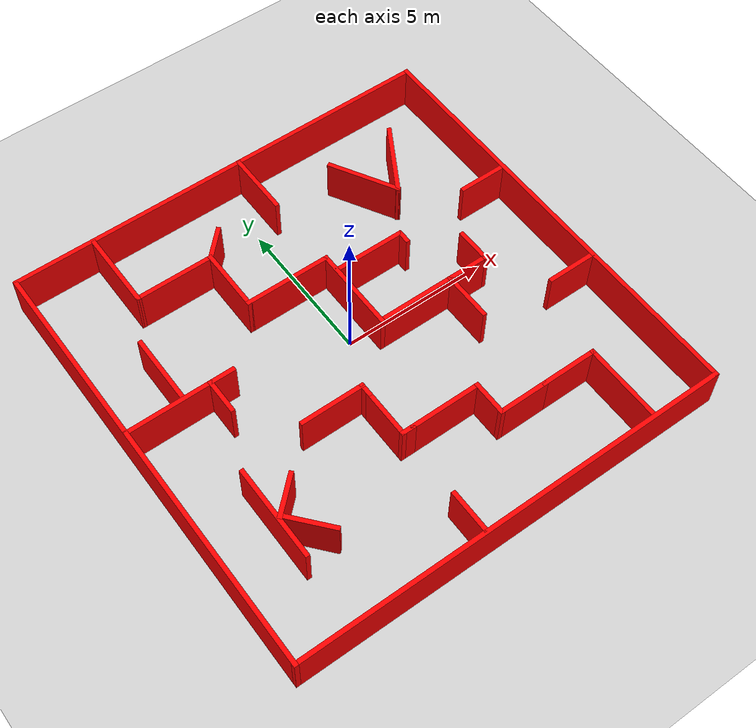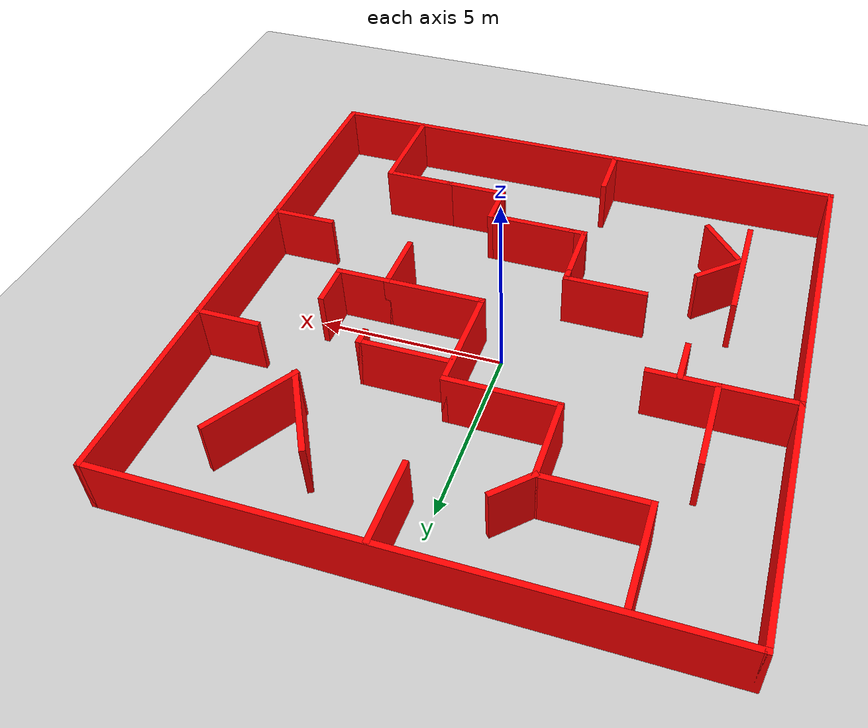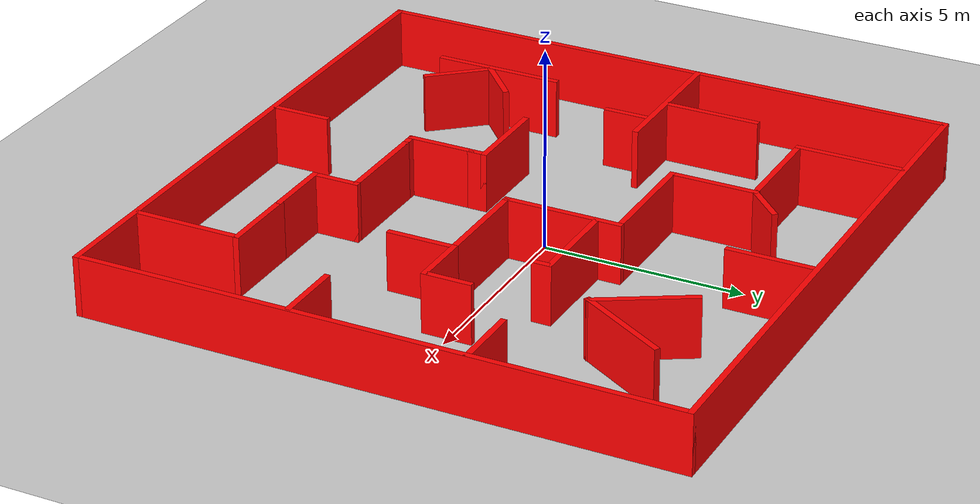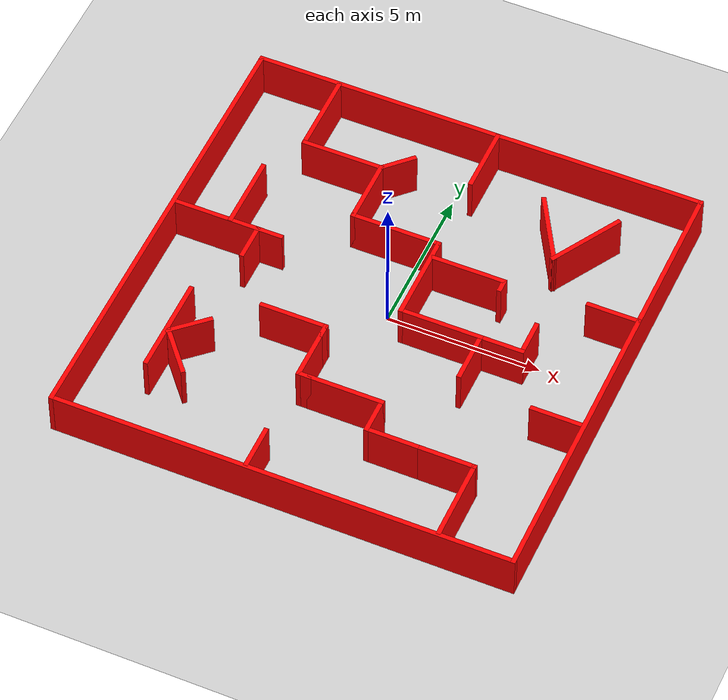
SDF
<sdf version="1.4">
 <world name="default">
  <light name="sun" type="directional">
   <pose>0 0 10 0 -0 0</pose>
   <diffuse>0.8 0.8 0.8 1</diffuse>
   <specular>0.2 0.2 0.2 1</specular>
   <attenuation>
    <range>1000</range>
    <constant>0.9</constant>
    <linear>0.01</linear>
    <quadratic>0.001</quadratic>
   </attenuation>
   <direction>-0.5 0.1 -0.9</direction>
  </light>
  <model name="ground_plane">
   <static>1</static>
   <link name="link">
    <collision name="collision">
     <geometry><plane><normal>0 0 1</normal><size>100 100</size></plane></geometry>
     <surface><friction><ode><mu>100</mu><mu2>50</mu2></ode></friction></surface>
    </collision>
    <visual name="visual">
     <cast_shadows>0</cast_shadows>
     <geometry><plane><normal>0 0 1</normal><size>100 100</size></plane></geometry>
     <material>
      <script><uri>file://media/materials/scripts/gazebo.material</uri><name>Gazebo/Grey</name></script>
     </material>
    </visual>
    <velocity_decay><linear>0</linear><angular>0</angular></velocity_decay>
   </link>
  </model>
  <physics type="ode">
   <max_step_size>0.001</max_step_size>
   <real_time_factor>1</real_time_factor>
   <real_time_update_rate>1000</real_time_update_rate>
   <gravity>0 0 -9.8</gravity>
  </physics>
  <scene><ambient>0.4 0.4 0.4 1</ambient><background>0.7 0.7 0.7 1</background><shadows>1</shadows></scene>
  <spherical_coordinates>
   <surface_model>EARTH_WGS84</surface_model>
   <latitude_deg>0</latitude_deg>
   <longitude_deg>0</longitude_deg>
   <elevation>0</elevation>
   <heading_deg>0</heading_deg>
  </spherical_coordinates>
  <model name="test_space_3">
   <pose>0 -0.424212 -0.523561 0 -0 0</pose>
   <link name="Wall_100">
    <collision name="Wall_100_Collision">
     <geometry><box><size>2.75 0.15 1.5</size></box></geometry>
     <pose>0 0 1.25 0 -0 0</pose>
    </collision>
    <visual name="Wall_100_Visual">
     <pose>0 0 1.25 0 -0 0</pose>
     <geometry><box><size>2.75 0.15 1.5</size></box></geometry>
     <material>
      <script><uri>file://media/materials/scripts/gazebo.material</uri><name>Gazebo/Grey</name></script>
      <ambient>1 0 0 1</ambient>
     </material>
    </visual>
    <pose>-4.73449 6.05707 0 0 0 -1.5708</pose>
    <velocity_decay><linear>0</linear><angular>0</angular></velocity_decay>
   </link>
   <link name="Wall_101">
    <collision name="Wall_101_Collision">
     <geometry><box><size>2.75 0.15 1.5</size></box></geometry>
     <pose>0 0 1.25 0 -0 0</pose>
    </collision>
    <visual name="Wall_101_Visual">
     <pose>0 0 1.25 0 -0 0</pose>
     <geometry><box><size>2.75 0.15 1.5</size></box></geometry>
     <material>
      <script><uri>file://media/materials/scripts/gazebo.material</uri><name>Gazebo/Grey</name></script>
      <ambient>1 0 0 1</ambient>
     </material>
    </visual>
    <pose>-3.43449 4.75707 0 0 -0 0</pose>
    <velocity_decay><linear>0</linear><angular>0</angular></velocity_decay>
   </link>
   <link name="Wall_102">
    <collision name="Wall_102_Collision">
     <geometry><box><size>2.25 0.15 1.5</size></box></geometry>
     <pose>0 0 1.25 0 -0 0</pose>
    </collision>
    <visual name="Wall_102_Visual">
     <pose>0 0 1.25 0 -0 0</pose>
     <geometry><box><size>2.25 0.15 1.5</size></box></geometry>
     <material>
      <script><uri>file://media/materials/scripts/gazebo.material</uri><name>Gazebo/Grey</name></script>
      <ambient>1 0 0 1</ambient>
     </material>
    </visual>
    <pose>-2.13449 3.70707 0 0 0 -1.5708</pose>
    <velocity_decay><linear>0</linear><angular>0</angular></velocity_decay>
   </link>
   <link name="Wall_103">
    <collision name="Wall_103_Collision">
     <geometry><box><size>3 0.15 1.5</size></box></geometry>
     <pose>0 0 1.25 0 -0 0</pose>
    </collision>
    <visual name="Wall_103_Visual">
     <pose>0 0 1.25 0 -0 0</pose>
     <geometry><box><size>3 0.15 1.5</size></box></geometry>
     <material>
      <script><uri>file://media/materials/scripts/gazebo.material</uri><name>Gazebo/Grey</name></script>
      <ambient>1 0 0 1</ambient>
     </material>
    </visual>
    <pose>-0.709491 2.65707 0 0 -0 0</pose>
    <velocity_decay><linear>0</linear><angular>0</angular></velocity_decay>
   </link>
   <link name="Wall_104">
    <collision name="Wall_104_Collision">
     <geometry><box><size>3 0.15 1.5</size></box></geometry>
     <pose>0 0 1.25 0 -0 0</pose>
    </collision>
    <visual name="Wall_104_Visual">
     <pose>0 0 1.25 0 -0 0</pose>
     <geometry><box><size>3 0.15 1.5</size></box></geometry>
     <material>
      <script><uri>file://media/materials/scripts/gazebo.material</uri><name>Gazebo/Grey</name></script>
      <ambient>1 0 0 1</ambient>
     </material>
    </visual>
    <pose>0.71551 1.23207 0 0 0 -1.5708</pose>
    <velocity_decay><linear>0</linear><angular>0</angular></velocity_decay>
   </link>
   <link name="Wall_105">
    <collision name="Wall_105_Collision">
     <geometry><box><size>2.75 0.15 1.5</size></box></geometry>
     <pose>0 0 1.25 0 -0 0</pose>
    </collision>
    <visual name="Wall_105_Visual">
     <pose>0 0 1.25 0 -0 0</pose>
     <geometry><box><size>2.75 0.15 1.5</size></box></geometry>
     <material>
      <script><uri>file://media/materials/scripts/gazebo.material</uri><name>Gazebo/Grey</name></script>
      <ambient>1 0 0 1</ambient>
     </material>
    </visual>
    <pose>2.01551 -0.192928 0 0 -0 0</pose>
    <velocity_decay><linear>0</linear><angular>0</angular></velocity_decay>
   </link>
   <link name="Wall_106">
    <collision name="Wall_106_Collision">
     <geometry><box><size>1.75 0.15 1.5</size></box></geometry>
     <pose>0 0 1.25 0 -0 0</pose>
    </collision>
    <visual name="Wall_106_Visual">
     <pose>0 0 1.25 0 -0 0</pose>
     <geometry><box><size>1.75 0.15 1.5</size></box></geometry>
     <material>
      <script><uri>file://media/materials/scripts/gazebo.material</uri><name>Gazebo/Grey</name></script>
      <ambient>1 0 0 1</ambient>
     </material>
    </visual>
    <pose>3.31551 -0.992928 0 0 0 -1.5708</pose>
    <velocity_decay><linear>0</linear><angular>0</angular></velocity_decay>
   </link>
   <link name="Wall_108">
    <collision name="Wall_108_Collision">
     <geometry><box><size>2.75 0.15 1.5</size></box></geometry>
     <pose>0 0 1.25 0 -0 0</pose>
    </collision>
    <visual name="Wall_108_Visual">
     <pose>0 0 1.25 0 -0 0</pose>
     <geometry><box><size>2.75 0.15 1.5</size></box></geometry>
     <material>
      <script><uri>file://media/materials/scripts/gazebo.material</uri><name>Gazebo/Grey</name></script>
      <ambient>1 0 0 1</ambient>
     </material>
    </visual>
    <pose>5.05118 -6.04333 0 0 -0 1.5708</pose>
    <velocity_decay><linear>0</linear><angular>0</angular></velocity_decay>
   </link>
   <link name="Wall_109">
    <collision name="Wall_109_Collision">
     <geometry><box><size>2 0.15 1.5</size></box></geometry>
     <pose>0 0 1.25 0 -0 0</pose>
    </collision>
    <visual name="Wall_109_Visual">
     <pose>0 0 1.25 0 -0 0</pose>
     <geometry><box><size>2 0.15 1.5</size></box></geometry>
     <material>
      <script><uri>file://media/materials/scripts/gazebo.material</uri><name>Gazebo/Grey</name></script>
      <ambient>1 0 0 1</ambient>
     </material>
    </visual>
    <pose>4.12618 -4.74332 0 0 -0 3.14159</pose>
    <velocity_decay><linear>0</linear><angular>0</angular></velocity_decay>
   </link>
   <link name="Wall_110">
    <collision name="Wall_110_Collision">
     <geometry><box><size>1.75 0.15 1.5</size></box></geometry>
     <pose>0 0 1.25 0 -0 0</pose>
    </collision>
    <visual name="Wall_110_Visual">
     <pose>0 0 1.25 0 -0 0</pose>
     <geometry><box><size>1.75 0.15 1.5</size></box></geometry>
     <material>
      <script><uri>file://media/materials/scripts/gazebo.material</uri><name>Gazebo/Grey</name></script>
      <ambient>1 0 0 1</ambient>
     </material>
    </visual>
    <pose>2.40118 -4.74332 0 0 -0 3.14159</pose>
    <velocity_decay><linear>0</linear><angular>0</angular></velocity_decay>
   </link>
   <link name="Wall_111">
    <collision name="Wall_111_Collision">
     <geometry><box><size>1.25 0.15 1.5</size></box></geometry>
     <pose>0 0 1.25 0 -0 0</pose>
    </collision>
    <visual name="Wall_111_Visual">
     <pose>0 0 1.25 0 -0 0</pose>
     <geometry><box><size>1.25 0.15 1.5</size></box></geometry>
     <material>
      <script><uri>file://media/materials/scripts/gazebo.material</uri><name>Gazebo/Grey</name></script>
      <ambient>1 0 0 1</ambient>
     </material>
    </visual>
    <pose>1.60118 -4.19332 0 0 -0 1.5708</pose>
    <velocity_decay><linear>0</linear><angular>0</angular></velocity_decay>
   </link>
   <link name="Wall_112">
    <collision name="Wall_112_Collision">
     <geometry><box><size>2.5 0.15 1.5</size></box></geometry>
     <pose>0 0 1.25 0 -0 0</pose>
    </collision>
    <visual name="Wall_112_Visual">
     <pose>0 0 1.25 0 -0 0</pose>
     <geometry><box><size>2.5 0.15 1.5</size></box></geometry>
     <material>
      <script><uri>file://media/materials/scripts/gazebo.material</uri><name>Gazebo/Grey</name></script>
      <ambient>1 0 0 1</ambient>
     </material>
    </visual>
    <pose>0.426178 -3.64332 0 0 -0 3.14159</pose>
    <velocity_decay><linear>0</linear><angular>0</angular></velocity_decay>
   </link>
   <link name="Wall_113">
    <collision name="Wall_113_Collision">
     <geometry><box><size>0.5 0.15 1.5</size></box></geometry>
     <pose>0 0 1.25 0 -0 0</pose>
    </collision>
    <visual name="Wall_113_Visual">
     <pose>0 0 1.25 0 -0 0</pose>
     <geometry><box><size>0.5 0.15 1.5</size></box></geometry>
     <material>
      <script><uri>file://media/materials/scripts/gazebo.material</uri><name>Gazebo/Grey</name></script>
      <ambient>1 0 0 1</ambient>
     </material>
    </visual>
    <pose>-0.923823 -3.64332 0 0 -0 3.14159</pose>
    <velocity_decay><linear>0</linear><angular>0</angular></velocity_decay>
   </link>
   <link name="Wall_114">
    <collision name="Wall_114_Collision">
     <geometry><box><size>1.75 0.15 1.5</size></box></geometry>
     <pose>0 0 1.25 0 -0 0</pose>
    </collision>
    <visual name="Wall_114_Visual">
     <pose>0 0 1.25 0 -0 0</pose>
     <geometry><box><size>1.75 0.15 1.5</size></box></geometry>
     <material>
      <script><uri>file://media/materials/scripts/gazebo.material</uri><name>Gazebo/Grey</name></script>
      <ambient>1 0 0 1</ambient>
     </material>
    </visual>
    <pose>-1.09882 -2.84333 0 0 -0 1.5708</pose>
    <velocity_decay><linear>0</linear><angular>0</angular></velocity_decay>
   </link>
   <link name="Wall_115">
    <collision name="Wall_115_Collision">
     <geometry><box><size>0.5 0.15 1.5</size></box></geometry>
     <pose>0 0 1.25 0 -0 0</pose>
    </collision>
    <visual name="Wall_115_Visual">
     <pose>0 0 1.25 0 -0 0</pose>
     <geometry><box><size>0.5 0.15 1.5</size></box></geometry>
     <material>
      <script><uri>file://media/materials/scripts/gazebo.material</uri><name>Gazebo/Grey</name></script>
      <ambient>1 0 0 1</ambient>
     </material>
    </visual>
    <pose>-1.09882 -1.86833 0 0 -0 1.5708</pose>
    <velocity_decay><linear>0</linear><angular>0</angular></velocity_decay>
   </link>
   <link name="Wall_116">
    <collision name="Wall_116_Collision">
     <geometry><box><size>2.25 0.15 1.5</size></box></geometry>
     <pose>0 0 1.25 0 -0 0</pose>
    </collision>
    <visual name="Wall_116_Visual">
     <pose>0 0 1.25 0 -0 0</pose>
     <geometry><box><size>2.25 0.15 1.5</size></box></geometry>
     <material>
      <script><uri>file://media/materials/scripts/gazebo.material</uri><name>Gazebo/Grey</name></script>
      <ambient>1 0 0 1</ambient>
     </material>
    </visual>
    <pose>-2.14882 -1.69332 0 0 -0 3.14159</pose>
    <velocity_decay><linear>0</linear><angular>0</angular></velocity_decay>
   </link>
   <link name="Wall_118">
    <collision name="Wall_118_Collision">
     <geometry><box><size>1.5 0.15 1.5</size></box></geometry>
     <pose>0 0 1.25 0 -0 0</pose>
    </collision>
    <visual name="Wall_118_Visual">
     <pose>0 0 1.25 0 -0 0</pose>
     <geometry><box><size>1.5 0.15 1.5</size></box></geometry>
     <material>
      <script><uri>file://media/materials/scripts/gazebo.material</uri><name>Gazebo/Grey</name></script>
      <ambient>1 0 0 1</ambient>
     </material>
    </visual>
    <pose>-1.09746 -6.66833 0 0 -0 1.5708</pose>
    <velocity_decay><linear>0</linear><angular>0</angular></velocity_decay>
   </link>
   <link name="Wall_121">
    <collision name="Wall_121_Collision">
     <geometry><box><size>1.75 0.15 1.5</size></box></geometry>
     <pose>0 0 1.25 0 -0 0</pose>
    </collision>
    <visual name="Wall_121_Visual">
     <pose>0 0 1.25 0 -0 0</pose>
     <geometry><box><size>1.75 0.15 1.5</size></box></geometry>
     <material>
      <script><uri>file://media/materials/scripts/gazebo.material</uri><name>Gazebo/Grey</name></script>
      <ambient>1 0 0 1</ambient>
     </material>
    </visual>
    <pose>6.60224 2.2926 0 0 -0 3.14159</pose>
    <velocity_decay><linear>0</linear><angular>0</angular></velocity_decay>
   </link>
   <link name="Wall_123">
    <collision name="Wall_123_Collision">
     <geometry><box><size>2.25 0.15 1.5</size></box></geometry>
     <pose>0 0 1.25 0 -0 0</pose>
    </collision>
    <visual name="Wall_123_Visual">
     <pose>0 0 1.25 0 -0 0</pose>
     <geometry><box><size>2.25 0.15 1.5</size></box></geometry>
     <material>
      <script><uri>file://media/materials/scripts/gazebo.material</uri><name>Gazebo/Grey</name></script>
      <ambient>1 0 0 1</ambient>
     </material>
    </visual>
    <pose>0.659217 6.34853 0 0 0 -1.5708</pose>
    <velocity_decay><linear>0</linear><angular>0</angular></velocity_decay>
   </link>
   <link name="Wall_125">
    <collision name="Wall_125_Collision">
     <geometry><box><size>3.75 0.15 1.5</size></box></geometry>
     <pose>0 0 1.25 0 -0 0</pose>
    </collision>
    <visual name="Wall_125_Visual">
     <pose>0 0 1.25 0 -0 0</pose>
     <geometry><box><size>3.75 0.15 1.5</size></box></geometry>
     <material>
      <script><uri>file://media/materials/scripts/gazebo.material</uri><name>Gazebo/Grey</name></script>
      <ambient>1 0 0 1</ambient>
     </material>
    </visual>
    <pose>-5.61056 0.967757 0 0 -0 0</pose>
    <velocity_decay><linear>0</linear><angular>0</angular></velocity_decay>
   </link>
   <link name="Wall_127">
    <collision name="Wall_127_Collision">
     <geometry><box><size>1.75 0.15 1.5</size></box></geometry>
     <pose>0 0 1.25 0 -0 0</pose>
    </collision>
    <visual name="Wall_127_Visual">
     <pose>0 0 1.25 0 -0 0</pose>
     <geometry><box><size>1.75 0.15 1.5</size></box></geometry>
     <material>
      <script><uri>file://media/materials/scripts/gazebo.material</uri><name>Gazebo/Grey</name></script>
      <ambient>1 0 0 1</ambient>
     </material>
    </visual>
    <pose>6.56866 -2.05139 0 0 -0 3.14159</pose>
    <velocity_decay><linear>0</linear><angular>0</angular></velocity_decay>
   </link>
   <link name="Wall_129">
    <collision name="Wall_129_Collision">
     <geometry><box><size>2.5 0.15 1.5</size></box></geometry>
     <pose>0 0 1.25 0 -0 0</pose>
    </collision>
    <visual name="Wall_129_Visual">
     <pose>0 0 1.25 0 -0 0</pose>
     <geometry><box><size>2.5 0.15 1.5</size></box></geometry>
     <material>
      <script><uri>file://media/materials/scripts/gazebo.material</uri><name>Gazebo/Grey</name></script>
      <ambient>1 0 0 1</ambient>
     </material>
    </visual>
    <pose>-5.49749 2.16166 0 0 -0 1.5708</pose>
    <velocity_decay><linear>0</linear><angular>0</angular></velocity_decay>
   </link>
   <link name="Wall_131">
    <collision name="Wall_131_Collision">
     <geometry><box><size>1.25 0.15 1.5</size></box></geometry>
     <pose>0 0 1.25 0 -0 0</pose>
    </collision>
    <visual name="Wall_131_Visual">
     <pose>0 0 1.25 0 -0 0</pose>
     <geometry><box><size>1.25 0.15 1.5</size></box></geometry>
     <material>
      <script><uri>file://media/materials/scripts/gazebo.material</uri><name>Gazebo/Grey</name></script>
      <ambient>1 0 0 1</ambient>
     </material>
    </visual>
    <pose>-4.57979 0.406067 0 0 0 -1.5708</pose>
    <velocity_decay><linear>0</linear><angular>0</angular></velocity_decay>
   </link>
   <link name="Wall_133">
    <collision name="Wall_133_Collision">
     <geometry><box><size>1.5 0.15 1.5</size></box></geometry>
     <pose>0 0 1.25 0 -0 0</pose>
    </collision>
    <visual name="Wall_133_Visual">
     <pose>0 0 1.25 0 -0 0</pose>
     <geometry><box><size>1.5 0.15 1.5</size></box></geometry>
     <material>
      <script><uri>file://media/materials/scripts/gazebo.material</uri><name>Gazebo/Grey</name></script>
      <ambient>1 0 0 1</ambient>
     </material>
    </visual>
    <pose>3.99051 -0.192928 0 0 -0 0</pose>
    <velocity_decay><linear>0</linear><angular>0</angular></velocity_decay>
   </link>
   <link name="Wall_134">
    <collision name="Wall_134_Collision">
     <geometry><box><size>1.25 0.15 1.5</size></box></geometry>
     <pose>0 0 1.25 0 -0 0</pose>
    </collision>
    <visual name="Wall_134_Visual">
     <pose>0 0 1.25 0 -0 0</pose>
     <geometry><box><size>1.25 0.15 1.5</size></box></geometry>
     <material>
      <script><uri>file://media/materials/scripts/gazebo.material</uri><name>Gazebo/Grey</name></script>
      <ambient>1 0 0 1</ambient>
     </material>
    </visual>
    <pose>4.66551 0.357072 0 0 -0 1.5708</pose>
    <velocity_decay><linear>0</linear><angular>0</angular></velocity_decay>
   </link>
   <link name="Wall_139">
    <collision name="Wall_139_Collision">
     <geometry><box><size>2.5 0.15 1.5</size></box></geometry>
     <pose>0 0 1.25 0 -0 0</pose>
    </collision>
    <visual name="Wall_139_Visual">
     <pose>0 0 1.25 0 -0 0</pose>
     <geometry><box><size>2.5 0.15 1.5</size></box></geometry>
     <material>
      <script><uri>file://media/materials/scripts/gazebo.material</uri><name>Gazebo/Grey</name></script>
      <ambient>1 0 0 1</ambient>
     </material>
    </visual>
    <pose>1.9485 2.08791 0 0 -0 0</pose>
    <velocity_decay><linear>0</linear><angular>0</angular></velocity_decay>
   </link>
   <link name="Wall_140">
    <collision name="Wall_140_Collision">
     <geometry><box><size>0.5 0.15 1.5</size></box></geometry>
     <pose>0 0 1.25 0 -0 0</pose>
    </collision>
    <visual name="Wall_140_Visual">
     <pose>0 0 1.25 0 -0 0</pose>
     <geometry><box><size>0.5 0.15 1.5</size></box></geometry>
     <material>
      <script><uri>file://media/materials/scripts/gazebo.material</uri><name>Gazebo/Grey</name></script>
      <ambient>1 0 0 1</ambient>
     </material>
    </visual>
    <pose>3.1235 1.91291 0 0 0 -1.5708</pose>
    <velocity_decay><linear>0</linear><angular>0</angular></velocity_decay>
   </link>
   <link name="Wall_142">
    <collision name="Wall_142_Collision">
     <geometry><box><size>1.25 0.15 1.5</size></box></geometry>
     <pose>0 0 1.25 0 -0 0</pose>
    </collision>
    <visual name="Wall_142_Visual">
     <pose>0 0 1.25 0 -0 0</pose>
     <geometry><box><size>1.25 0.15 1.5</size></box></geometry>
     <material>
      <script><uri>file://media/materials/scripts/gazebo.material</uri><name>Gazebo/Grey</name></script>
      <ambient>1 0 0 1</ambient>
     </material>
    </visual>
    <pose>-1.74558 5.14598 0 0 -0 0.785398</pose>
    <velocity_decay><linear>0</linear><angular>0</angular></velocity_decay>
   </link>
   <link name="Wall_85">
    <collision name="Wall_85_Collision">
     <geometry><box><size>15 0.15 1.5</size></box></geometry>
     <pose>0 0 1.25 0 -0 0</pose>
    </collision>
    <visual name="Wall_85_Visual">
     <pose>0 0 1.25 0 -0 0</pose>
     <geometry><box><size>15 0.15 1.5</size></box></geometry>
     <material>
      <script><uri>file://media/materials/scripts/gazebo.material</uri><name>Gazebo/Grey</name></script>
      <ambient>1 0 0 1</ambient>
     </material>
    </visual>
    <pose>0 7.425 0 0 -0 0</pose>
    <velocity_decay><linear>0</linear><angular>0</angular></velocity_decay>
   </link>
   <link name="Wall_86">
    <collision name="Wall_86_Collision">
     <geometry><box><size>15 0.15 1.5</size></box></geometry>
     <pose>0 0 1.25 0 -0 0</pose>
    </collision>
    <visual name="Wall_86_Visual">
     <pose>0 0 1.25 0 -0 0</pose>
     <geometry><box><size>15 0.15 1.5</size></box></geometry>
     <material>
      <script><uri>file://media/materials/scripts/gazebo.material</uri><name>Gazebo/Grey</name></script>
      <ambient>1 0 0 1</ambient>
     </material>
    </visual>
    <pose>7.425 0 0 0 0 -1.5708</pose>
    <velocity_decay><linear>0</linear><angular>0</angular></velocity_decay>
   </link>
   <link name="Wall_87">
    <collision name="Wall_87_Collision">
     <geometry><box><size>15 0.15 1.5</size></box></geometry>
     <pose>0 0 1.25 0 -0 0</pose>
    </collision>
    <visual name="Wall_87_Visual">
     <pose>0 0 1.25 0 -0 0</pose>
     <geometry><box><size>15 0.15 1.5</size></box></geometry>
     <material>
      <script><uri>file://media/materials/scripts/gazebo.material</uri><name>Gazebo/Grey</name></script>
      <ambient>1 0 0 1</ambient>
     </material>
    </visual>
    <pose>0 -7.425 0 0 -0 3.14159</pose>
    <velocity_decay><linear>0</linear><angular>0</angular></velocity_decay>
   </link>
   <link name="Wall_88">
    <collision name="Wall_88_Collision">
     <geometry><box><size>15 0.15 1.5</size></box></geometry>
     <pose>0 0 1.25 0 -0 0</pose>
    </collision>
    <visual name="Wall_88_Visual">
     <pose>0 0 1.25 0 -0 0</pose>
     <geometry><box><size>15 0.15 1.5</size></box></geometry>
     <material>
      <script><uri>file://media/materials/scripts/gazebo.material</uri><name>Gazebo/Grey</name></script>
      <ambient>1 0 0 1</ambient>
     </material>
    </visual>
    <pose>-7.425 0 0 0 -0 1.5708</pose>
    <velocity_decay><linear>0</linear><angular>0</angular></velocity_decay>
   </link>
   <link name="Wall_90">
    <collision name="Wall_90_Collision">
     <geometry><box><size>3.25 0.15 1.5</size></box></geometry>
     <pose>0 0 1.25 0 -0 0</pose>
    </collision>
    <visual name="Wall_90_Visual">
     <pose>0 0 1.25 0 -0 0</pose>
     <geometry><box><size>3.25 0.15 1.5</size></box></geometry>
     <material>
      <script><uri>file://media/materials/scripts/gazebo.material</uri><name>Gazebo/Grey</name></script>
      <ambient>1 0 0 1</ambient>
     </material>
    </visual>
    <pose>-5.43731 -3.54103 0 0 0 -1.5708</pose>
    <velocity_decay><linear>0</linear><angular>0</angular></velocity_decay>
   </link>
   <link name="Wall_92">
    <collision name="Wall_92_Collision">
     <geometry><box><size>1.5012 0.15 1.5</size></box></geometry>
     <pose>0 0 1.25 0 -0 0</pose>
    </collision>
    <visual name="Wall_92_Visual">
     <pose>0 0 1.25 0 -0 0</pose>
     <geometry><box><size>1.5012 0.15 1.5</size></box></geometry>
     <material>
      <script><uri>file://media/materials/scripts/gazebo.material</uri><name>Gazebo/Grey</name></script>
      <ambient>1 0 0 1</ambient>
     </material>
    </visual>
    <pose>-4.8779 -3.28653 0 0 -0 0.743283</pose>
    <velocity_decay><linear>0</linear><angular>0</angular></velocity_decay>
   </link>
   <link name="Wall_94">
    <collision name="Wall_94_Collision">
     <geometry><box><size>1.76929 0.15 1.5</size></box></geometry>
     <pose>0 0 1.25 0 -0 0</pose>
    </collision>
    <visual name="Wall_94_Visual">
     <pose>0 0 1.25 0 -0 0</pose>
     <geometry><box><size>1.76929 0.15 1.5</size></box></geometry>
     <material>
      <script><uri>file://media/materials/scripts/gazebo.material</uri><name>Gazebo/Grey</name></script>
      <ambient>1 0 0 1</ambient>
     </material>
    </visual>
    <pose>-4.82974 -4.33957 0 0 0 -0.864529</pose>
    <velocity_decay><linear>0</linear><angular>0</angular></velocity_decay>
   </link>
   <link name="Wall_97">
    <collision name="Wall_97_Collision">
     <geometry><box><size>2.52639 0.15 1.5</size></box></geometry>
     <pose>0 0 1.25 0 -0 0</pose>
    </collision>
    <visual name="Wall_97_Visual">
     <pose>0 0 1.25 0 -0 0</pose>
     <geometry><box><size>2.52639 0.15 1.5</size></box></geometry>
     <material>
      <script><uri>file://media/materials/scripts/gazebo.material</uri><name>Gazebo/Grey</name></script>
      <ambient>1 0 0 1</ambient>
     </material>
    </visual>
    <pose>3.55604 4.57212 0 0 0 -1.0536</pose>
    <velocity_decay><linear>0</linear><angular>0</angular></velocity_decay>
   </link>
   <link name="Wall_98">
    <collision name="Wall_98_Collision">
     <geometry><box><size>2.65106 0.15 1.5</size></box></geometry>
     <pose>0 0 1.25 0 -0 0</pose>
    </collision>
    <visual name="Wall_98_Visual">
     <pose>0 0 1.25 0 -0 0</pose>
     <geometry><box><size>2.65106 0.15 1.5</size></box></geometry>
     <material>
      <script><uri>file://media/materials/scripts/gazebo.material</uri><name>Gazebo/Grey</name></script>
      <ambient>1 0 0 1</ambient>
     </material>
    </visual>
    <pose>4.76146 4.60254 0 0 -0 1.03992</pose>
    <velocity_decay><linear>0</linear><angular>0</angular></velocity_decay>
   </link>
   <static>1</static>
  </model>
 </world>
</sdf>
